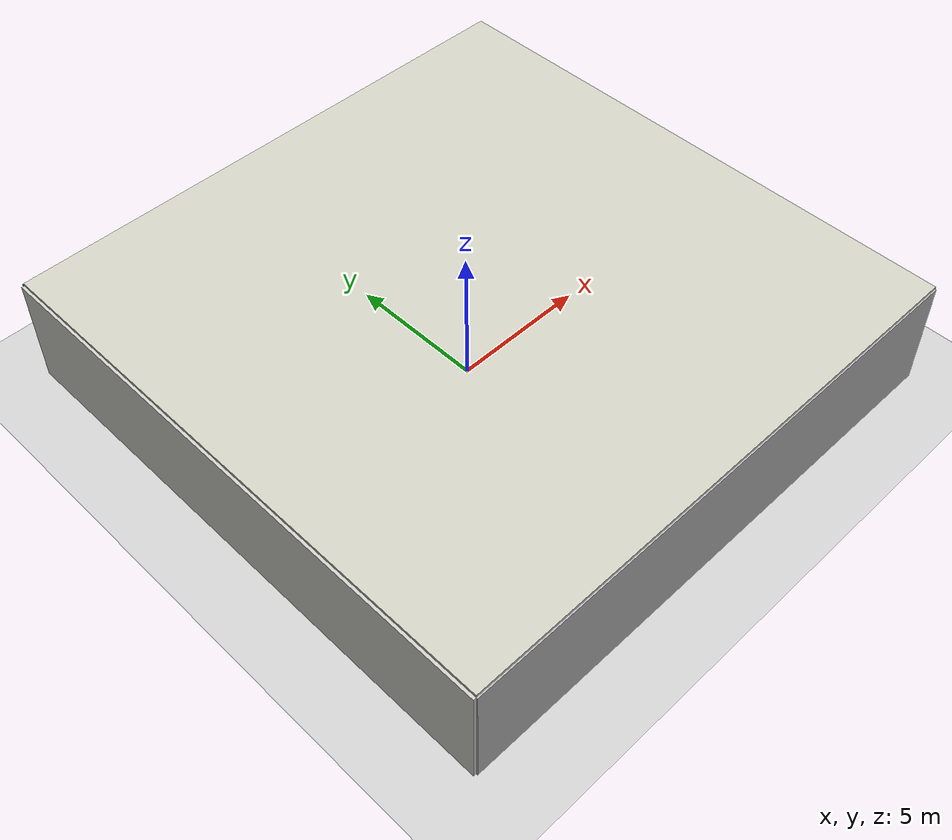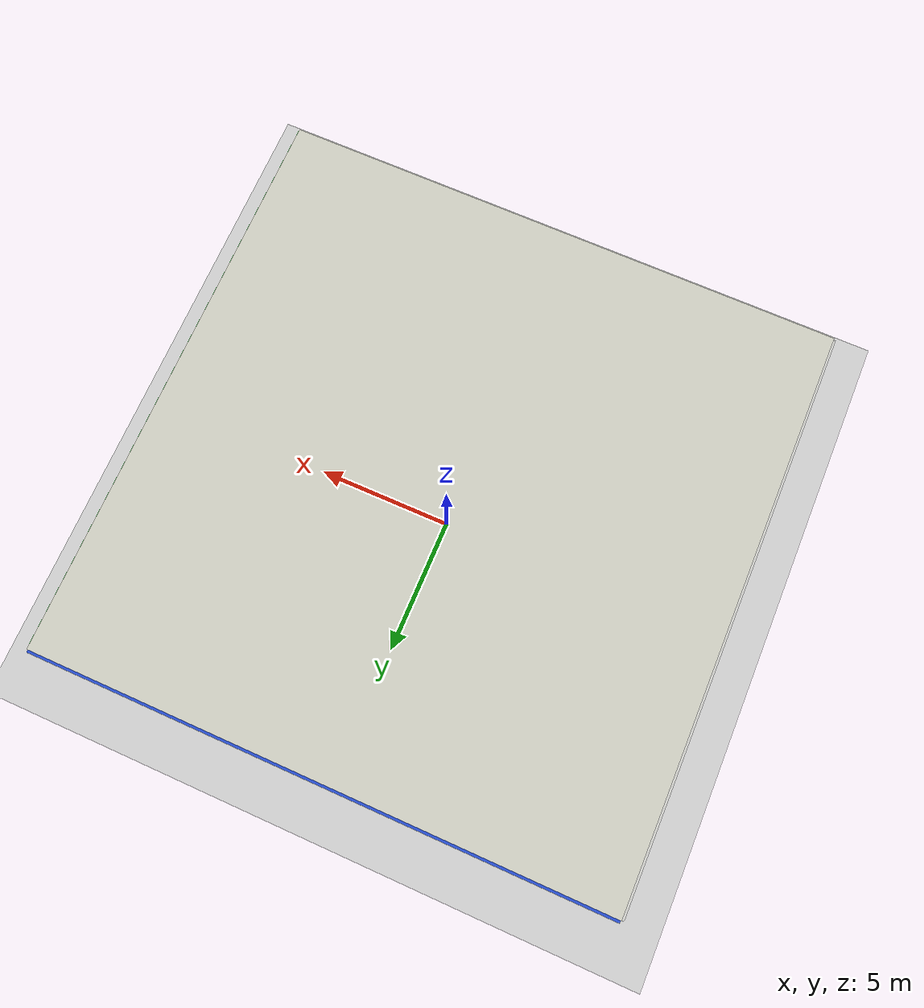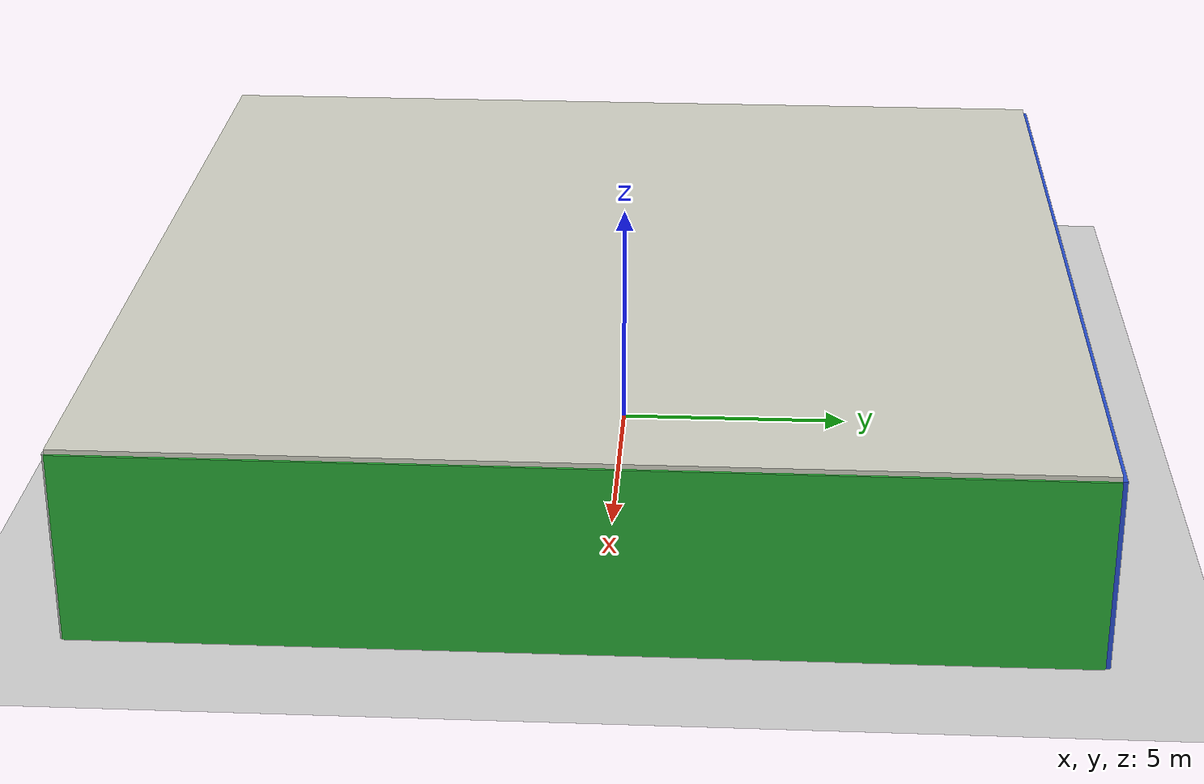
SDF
<sdf version="1.6">
 <world name="default">
  <light name="sun" type="directional">
   <pose>0 0 10 0 -0 0</pose>
   <diffuse>0.8 0.8 0.8 1</diffuse>
   <specular>0.2 0.2 0.2 1</specular>
   <attenuation>
    <range>1000</range>
    <constant>0.9</constant>
    <linear>0.5</linear>
    <quadratic>0.001</quadratic>
   </attenuation>
   <direction>-0.5 0.1 -0.9</direction>
  </light>
  <model name="ground_plane">
   <static>1</static>
   <link name="link">
    <collision name="collision">
     <geometry><plane><normal>0 0 1</normal><size>100 100</size></plane></geometry>
     <surface><friction><ode><mu>100</mu><mu2>50</mu2></ode></friction></surface>
    </collision>
    <visual name="visual">
     <cast_shadows>0</cast_shadows>
     <geometry><plane><normal>0 0 1</normal><size>100 100</size></plane></geometry>
     <material>
      <script><uri>file://media/materials/scripts/gazebo.material</uri><name>Gazebo/Grey</name></script>
     </material>
    </visual>
   </link>
  </model>
  <gravity>0 0 -9.8</gravity>
  <magnetic_field>6e-06 2.3e-05 -4.2e-05</magnetic_field>
  <atmosphere type="adiabatic"/>
  <physics default="0" name="default_physics" type="ode">
   <max_step_size>0.001</max_step_size>
   <real_time_factor>1</real_time_factor>
   <real_time_update_rate>1000</real_time_update_rate>
  </physics>
  <scene><ambient>0.4 0.4 0.4 1</ambient><background>0.7 0.7 0.7 1</background><shadows>0</shadows></scene>
  <spherical_coordinates>
   <surface_model>EARTH_WGS84</surface_model>
   <latitude_deg>0</latitude_deg>
   <longitude_deg>0</longitude_deg>
   <elevation>0</elevation>
   <heading_deg>0</heading_deg>
  </spherical_coordinates>
  <model name="four_walls">
   <static>1</static>
   <link name="Ceiling">
    <collision name="Ceiling_Collision"><geometry><box><size>20 20 0.1</size></box></geometry></collision>
    <visual name="Ceiling_Visual">
     <geometry><box><size>20 20 0.1</size></box></geometry>
     <material>
      <script><uri>file://media/materials/scripts/gazebo.material</uri><name>Gazebo/PaintedWall</name></script>
     </material>
    </visual>
    <pose>0 0 4.05 0 -0 0</pose>
   </link>
   <link name="Wall_South">
    <collision name="Wall_South_Collision">
     <geometry><box><size>20 0.1 4</size></box></geometry>
     <pose>0 0 2 0 -0 0</pose>
    </collision>
    <visual name="Wall_South_Visual">
     <pose>0 0 2 0 -0 0</pose>
     <geometry><box><size>20 0.1 4</size></box></geometry>
     <material>
      <script><uri>file://media/materials/scripts/gazebo.material</uri><name>Gazebo/Roa</name></script>
     </material>
    </visual>
    <velocity_decay><linear>0</linear><angular>0</angular></velocity_decay>
    <pose>0 -10 0 0 -0 0</pose>
   </link>
   <link name="Wall_East">
    <collision name="Wall_21_Collision">
     <geometry><box><size>20 0.1 4</size></box></geometry>
     <pose>0 0 2 0 -0 0</pose>
    </collision>
    <visual name="Wall_21_Visual">
     <pose>0 0 2 0 -0 0</pose>
     <geometry><box><size>20 0.1 4</size></box></geometry>
     <material>
      <script><uri>file://media/materials/scripts/gazebo.material</uri><name>Gazebo/Green</name></script>
     </material>
    </visual>
    <velocity_decay><linear>0</linear><angular>0</angular></velocity_decay>
    <pose>10 0 0 0 -0 1.5708</pose>
   </link>
   <link name="Wall_North">
    <collision name="Wall_22_Collision">
     <geometry><box><size>20 0.2 4</size></box></geometry>
     <pose>0 0 2 0 -0 0</pose>
    </collision>
    <visual name="Wall_22_Visual">
     <pose>0 0 2 0 -0 0</pose>
     <geometry><box><size>20 0.2 4</size></box></geometry>
     <material>
      <script><uri>file://media/materials/scripts/gazebo.material</uri><name>Gazebo/BlueLaser</name></script>
     </material>
    </visual>
    <velocity_decay><linear>0</linear><angular>0</angular></velocity_decay>
    <pose>0 10 0 0 -0 0</pose>
   </link>
   <link name="Wall_West">
    <collision name="Wall_23_Collision">
     <geometry><box><size>20 0.2 4</size></box></geometry>
     <pose>0 0 2 0 -0 0</pose>
    </collision>
    <visual name="Wall_23_Visual">
     <pose>0 0 2 0 -0 0</pose>
     <geometry><box><size>20 0.2 4</size></box></geometry>
     <material>
      <script><uri>file://media/materials/scripts/gazebo.material</uri><name>Gazebo/CeilingTiled</name></script>
     </material>
    </visual>
    <velocity_decay><linear>0</linear><angular>0</angular></velocity_decay>
    <pose>-10 0 0 0 0 -1.5708</pose>
   </link>
   <link name="Ground_link">
    <collision name="collision">
     <pose>0 0 0.05 0 -0 0</pose>
     <geometry><box><size>20 20 0.1</size></box></geometry>
    </collision>
    <visual name="visual">
     <pose>0 0 0.05 0 -0 0</pose>
     <geometry><box><size>20 20 0.1</size></box></geometry>
     <material>
      <script><uri>file://media/materials/scripts/gazebo.material</uri><name>Gazebo/JointAnchor</name></script>
     </material>
    </visual>
   </link>
   <pose>0.205996 -0.361878 0 0 -0 0</pose>
  </model>
  <light name="lightball_0" type="diffuse">
   <diffuse>0.8 0.8 0.8 1</diffuse>
   <specular>0.2 0.2 0.2 1</specular>
   <attenuation>
    <range>100</range>
    <constant>0.7</constant>
    <linear>0.5</linear>
    <quadratic>0.001</quadratic>
   </attenuation>
   <direction>-0.5 0.1 -0.9</direction>
   <pose>1.36209252031 -7.99044074576 3.28031011342 0 0 0</pose>
  </light>
  <light name="lightball_1" type="diffuse">
   <diffuse>0.8 0.8 0.8 1</diffuse>
   <specular>0.2 0.2 0.2 1</specular>
   <attenuation>
    <range>100</range>
    <constant>0.7</constant>
    <linear>0.5</linear>
    <quadratic>0.001</quadratic>
   </attenuation>
   <direction>-0.5 0.1 -0.9</direction>
   <pose>-5.95128676454 -3.39172221497 2.44662492537 0 0 0</pose>
  </light>
  <light name="lightball_2" type="diffuse">
   <diffuse>0.8 0.8 0.8 1</diffuse>
   <specular>0.2 0.2 0.2 1</specular>
   <attenuation>
    <range>100</range>
    <constant>0.7</constant>
    <linear>0.5</linear>
    <quadratic>0.001</quadratic>
   </attenuation>
   <direction>-0.5 0.1 -0.9</direction>
   <pose>1.40962723189 -7.34860701918 2.72809515878 0 0 0</pose>
  </light>
  <light name="lightball_3" type="diffuse">
   <diffuse>0.8 0.8 0.8 1</diffuse>
   <specular>0.2 0.2 0.2 1</specular>
   <attenuation>
    <range>100</range>
    <constant>0.7</constant>
    <linear>0.5</linear>
    <quadratic>0.001</quadratic>
   </attenuation>
   <direction>-0.5 0.1 -0.9</direction>
   <pose>-4.85799425274 -9.83129961074 2.3042568962 0 0 0</pose>
  </light>
  <light name="lightball_4" type="diffuse">
   <diffuse>0.8 0.8 0.8 1</diffuse>
   <specular>0.2 0.2 0.2 1</specular>
   <attenuation>
    <range>100</range>
    <constant>0.7</constant>
    <linear>0.5</linear>
    <quadratic>0.001</quadratic>
   </attenuation>
   <direction>-0.5 0.1 -0.9</direction>
   <pose>0.926437626992 -3.57806432144 2.86080003879 0 0 0</pose>
  </light>
  <include>
   <uri>model://textured_shapes_cylinder</uri>
   <pose>-8.26681329356 -7.71440378683 0 0 0 0.339762446653</pose>
  </include>
  <include>
   <uri>model://textured_shapes_box</uri>
   <pose>-7.46755831121 -4.28618869685 0 0 0 2.97419359122</pose>
  </include>
  <include>
   <uri>model://textured_shapes_sphere</uri>
   <pose>-3.04540187372 -4.12655971021 0 0 0 0.380483189126</pose>
  </include>
  <include>
   <uri>model://textured_shapes_box</uri>
   <pose>-3.70129088346 4.08800034382 0 0 0 1.23266479178</pose>
  </include>
  <include>
   <uri>model://textured_shapes_box</uri>
   <pose>-3.44758978381 9.2187033723 0 0 0 0.880732033907</pose>
  </include>
  <include>
   <uri>model://textured_shapes_sphere</uri>
   <pose>-0.00559552202982 4.08879141668 0 0 0 0.885081696012</pose>
  </include>
  <include>
   <uri>model://textured_shapes_cylinder</uri>
   <pose>7.87791200425 -7.14956489687 0 0 0 2.78044555313</pose>
  </include>
  <include>
   <uri>model://textured_shapes_cylinder</uri>
   <pose>8.16467214058 0.960536569093 0 0 0 1.48710233338</pose>
  </include>
  <include>
   <uri>model://textured_shapes_sphere</uri>
   <pose>8.51841146126 8.78638174776 0 0 0 2.65562367844</pose>
  </include>
 </world>
</sdf>

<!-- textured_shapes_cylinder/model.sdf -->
<sdf version="1.6">
  <model name="textured_shapes">
    <pose>0 0 0.5 0 0 0</pose>
    <link name="cylinder">
      <pose>0 1.5 0 0 0 0</pose>
      <collision name="collision">
        <geometry>
          <cylinder>
            <radius>0.5</radius>
            <length>1</length>
          </cylinder>
        </geometry>
      </collision>
      <visual name="visual">
        <geometry>
          <cylinder>
            <radius>0.5</radius>
            <length>1</length>
          </cylinder>
        </geometry>
        <material>
          <script>
            <uri>model://textured_shapes/materials/scripts</uri>
            <uri>model://textured_shapes/materials/textures</uri>
            <name>TexturedShape/Squares</name>
          </script>
        </material>
      </visual>
    </link>
  </model>
</sdf>

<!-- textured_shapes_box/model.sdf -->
<sdf version="1.6">
  <model name="textured_shapes">
    <pose>0 0 0.5 0 0 0</pose>
    <link name="box">
      <pose>0 -1.5 0 0 0 0</pose>
      <collision name="collision">
        <geometry>
          <box>
            <size>1 1 1</size>
          </box>
        </geometry>
      </collision>
      <visual name="visual">
        <geometry>
          <box>
            <size>1 1 1</size>
          </box>
        </geometry>
        <material>
          <script>
            <uri>model://textured_shapes/materials/scripts</uri>
            <uri>model://textured_shapes/materials/textures</uri>
            <name>TexturedShape/Squares</name>
          </script>
        </material>
      </visual>
    </link>
  </model>
</sdf>

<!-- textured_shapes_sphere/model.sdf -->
<sdf version="1.6">
  <model name="textured_shapes">
    <pose>0 0 0.5 0 0 0</pose>
    <link name="sphere">
      <collision name="collision">
        <geometry>
          <sphere>
            <radius>0.5</radius>
          </sphere>
        </geometry>
      </collision>
      <visual name="visual">
        <geometry>
          <sphere>
            <radius>0.5</radius>
          </sphere>
        </geometry>
        <material>
          <script>
            <uri>model://textured_shapes/materials/scripts</uri>
            <uri>model://textured_shapes/materials/textures</uri>
            <name>TexturedShape/Squares</name>
          </script>
        </material>
      </visual>
    </link>
  </model>
</sdf>
